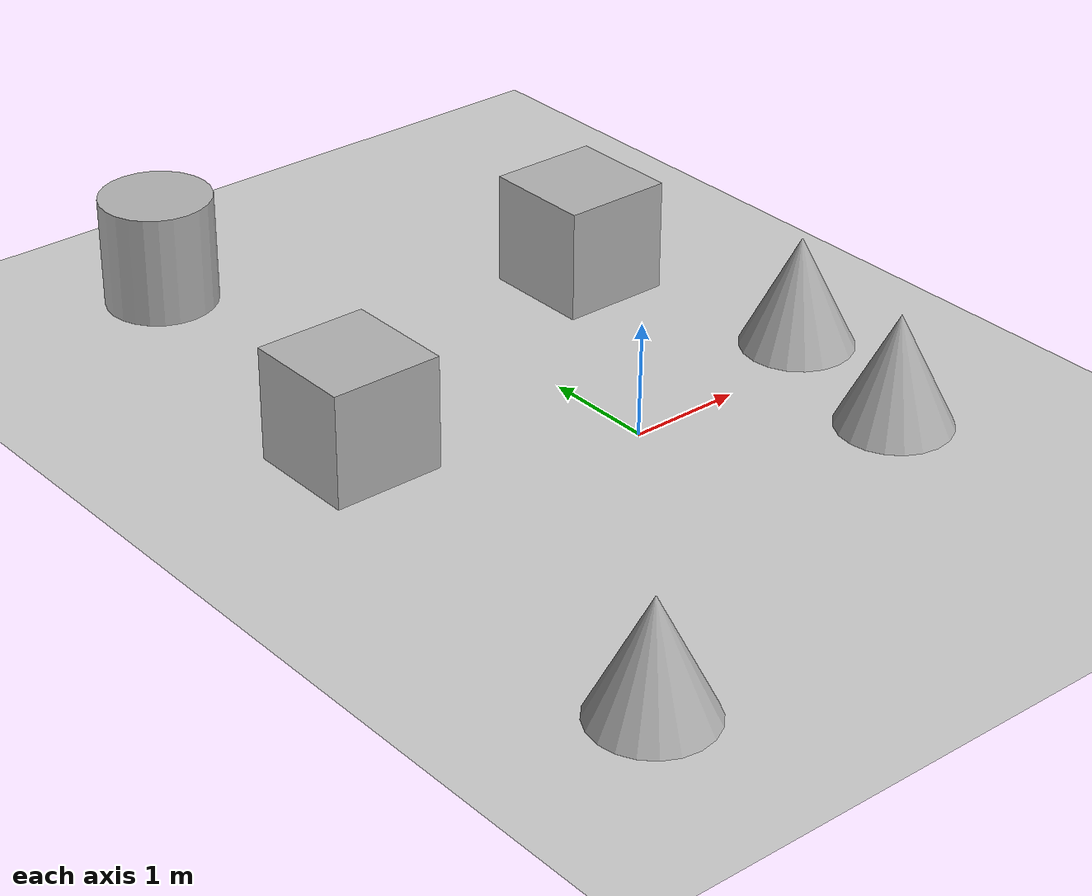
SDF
<sdf version='1.10'>
  <world name='empty'>
    <physics name='1ms' type='ignored'>
      <max_step_size>0.001</max_step_size>
      <real_time_factor>1</real_time_factor>
      <real_time_update_rate>1000</real_time_update_rate>
    </physics>
    <plugin name='gz::sim::systems::Physics' filename='gz-sim-physics-system'/>
    <plugin name='gz::sim::systems::UserCommands' filename='gz-sim-user-commands-system'/>
    <plugin name='gz::sim::systems::SceneBroadcaster' filename='gz-sim-scene-broadcaster-system'/>
    <plugin name='gz::sim::systems::Contact' filename='gz-sim-contact-system'/>
    <plugin
      filename="gz-sim-sensors-system"
      name="gz::sim::systems::Sensors">
      <render_engine>ogre2</render_engine>
    </plugin>
    <gravity>0 0 -9.8000000000000007</gravity>
    <magnetic_field>5.5644999999999998e-06 2.2875799999999999e-05 -4.2388400000000002e-05</magnetic_field>
    <atmosphere type='adiabatic'/>
    <scene>
      <ambient>0.400000006 0.400000006 0.400000006 1</ambient>
      <background>0.699999988 0.699999988 0.699999988 1</background>
      <shadows>true</shadows>
    </scene>
    <model name='ground_plane'>
      <static>true</static>
      <link name='link'>
        <collision name='collision'>
          <geometry>
            <plane>
              <normal>0 0 1</normal>
              <size>100 100</size>
            </plane>
          </geometry>
          <surface>
            <friction>
              <ode/>
            </friction>
            <bounce/>
            <contact/>
          </surface>
        </collision>
        <visual name='visual'>
          <geometry>
            <plane>
              <normal>0 0 1</normal>
              <size>100 100</size>
            </plane>
          </geometry>
          <material>
            <ambient>0.800000012 0.800000012 0.800000012 1</ambient>
            <diffuse>0.800000012 0.800000012 0.800000012 1</diffuse>
            <specular>0.800000012 0.800000012 0.800000012 1</specular>
          </material>
        </visual>
        <pose>0 0 0 0 0 0</pose>
        <inertial>
          <pose>0 0 0 0 0 0</pose>
          <mass>1</mass>
          <inertia>
            <ixx>1</ixx>
            <ixy>0</ixy>
            <ixz>0</ixz>
            <iyy>1</iyy>
            <iyz>0</iyz>
            <izz>1</izz>
          </inertia>
        </inertial>
        <enable_wind>false</enable_wind>
      </link>
      <pose>0 0 0 0 0 0</pose>
      <self_collide>false</self_collide>
    </model>
    <model name='box'>
      <pose>1.3443000316619873 2.3108599185943604 0.49999988138644785 6.6582442338586326e-18 -6.2665185630416551e-18 4.6787115810414775e-19</pose>
      <link name='box_link'>
        <inertial>
          <inertia>
            <ixx>0.16666</ixx>
            <ixy>0</ixy>
            <ixz>0</ixz>
            <iyy>0.16666</iyy>
            <iyz>0</iyz>
            <izz>0.16666</izz>
          </inertia>
          <mass>1</mass>
          <pose>0 0 0 0 0 0</pose>
        </inertial>
        <collision name='box_collision'>
          <geometry>
            <box>
              <size>1 1 1</size>
            </box>
          </geometry>
          <surface>
            <friction>
              <ode/>
            </friction>
            <bounce/>
            <contact/>
          </surface>
        </collision>
        <visual name='box_visual'>
          <geometry>
            <box>
              <size>1 1 1</size>
            </box>
          </geometry>
          <material>
            <ambient>0.300000012 0.300000012 0.300000012 1</ambient>
            <diffuse>0.699999988 0.699999988 0.699999988 1</diffuse>
            <specular>1 1 1 1</specular>
          </material>
        </visual>
        <pose>0 0 0 0 0 0</pose>
        <enable_wind>false</enable_wind>
      </link>
      <static>false</static>
      <self_collide>false</self_collide>
    </model>
    <model name='cone'>
      <pose>2.0419443191812419 0.28399373756640234 0.49999999993296756 5.2542474327592625e-17 -7.7132841039333329e-10 -1.7140678508643009e-22</pose>
      <link name='cone_link'>
        <inertial>
          <inertia>
            <ixx>0.074999999999999997</ixx>
            <ixy>0</ixy>
            <ixz>0</ixz>
            <iyy>0.074999999999999997</iyy>
            <iyz>0</iyz>
            <izz>0.074999999999999997</izz>
          </inertia>
          <mass>1</mass>
          <pose>0 0 0 0 0 0</pose>
        </inertial>
        <collision name='cone_collision'>
          <geometry>
            <cone>
              <radius>0.5</radius>
              <length>1</length>
            </cone>
          </geometry>
          <surface>
            <friction>
              <ode/>
            </friction>
            <bounce/>
            <contact/>
          </surface>
        </collision>
        <visual name='cone_visual'>
          <geometry>
            <cone>
              <radius>0.5</radius>
              <length>1</length>
            </cone>
          </geometry>
          <material>
            <ambient>0.300000012 0.300000012 0.300000012 1</ambient>
            <diffuse>0.699999988 0.699999988 0.699999988 1</diffuse>
            <specular>1 1 1 1</specular>
          </material>
        </visual>
        <pose>0 0 0 0 0 0</pose>
        <enable_wind>false</enable_wind>
      </link>
      <static>false</static>
      <self_collide>false</self_collide>
    </model>
    <model name='cone_0'>
      <pose>1.6956169808281039 -1.1822583702150418 0.49999999993296756 5.2541471503228405e-17 -7.7132841033694056e-10 -2.8937183272912105e-22</pose>
      <link name='cone_link'>
        <inertial>
          <inertia>
            <ixx>0.074999999999999997</ixx>
            <ixy>0</ixy>
            <ixz>0</ixz>
            <iyy>0.074999999999999997</iyy>
            <iyz>0</iyz>
            <izz>0.074999999999999997</izz>
          </inertia>
          <mass>1</mass>
          <pose>0 0 0 0 0 0</pose>
        </inertial>
        <collision name='cone_collision'>
          <geometry>
            <cone>
              <radius>0.5</radius>
              <length>1</length>
            </cone>
          </geometry>
          <surface>
            <friction>
              <ode/>
            </friction>
            <bounce/>
            <contact/>
          </surface>
        </collision>
        <visual name='cone_visual'>
          <geometry>
            <cone>
              <radius>0.5</radius>
              <length>1</length>
            </cone>
          </geometry>
          <material>
            <ambient>0.300000012 0.300000012 0.300000012 1</ambient>
            <diffuse>0.699999988 0.699999988 0.699999988 1</diffuse>
            <specular>1 1 1 1</specular>
          </material>
        </visual>
        <pose>0 0 0 0 0 0</pose>
        <enable_wind>false</enable_wind>
      </link>
      <static>false</static>
      <self_collide>false</self_collide>
    </model>
    <model name='box_0'>
      <pose>-2.0455440560051619 1.1123328050893955 0.49999999990199806 6.2287739151293738e-22 9.3279666454713669e-22 -3.6315533669320137e-22</pose>
      <link name='box_link'>
        <inertial>
          <inertia>
            <ixx>0.16666</ixx>
            <ixy>0</ixy>
            <ixz>0</ixz>
            <iyy>0.16666</iyy>
            <iyz>0</iyz>
            <izz>0.16666</izz>
          </inertia>
          <mass>1</mass>
          <pose>0 0 0 0 0 0</pose>
        </inertial>
        <collision name='box_collision'>
          <geometry>
            <box>
              <size>1 1 1</size>
            </box>
          </geometry>
          <surface>
            <friction>
              <ode/>
            </friction>
            <bounce/>
            <contact/>
          </surface>
        </collision>
        <visual name='box_visual'>
          <geometry>
            <box>
              <size>1 1 1</size>
            </box>
          </geometry>
          <material>
            <ambient>0.300000012 0.300000012 0.300000012 1</ambient>
            <diffuse>0.699999988 0.699999988 0.699999988 1</diffuse>
            <specular>1 1 1 1</specular>
          </material>
        </visual>
        <pose>0 0 0 0 0 0</pose>
        <enable_wind>false</enable_wind>
      </link>
      <static>false</static>
      <self_collide>false</self_collide>
    </model>
    <model name='cylinder'>
      <pose>-1.6781422083533579 4.3874863058605502 0.49999942638036005 4.7728004916885106e-20 -2.1691877558485589e-19 5.5515999605983893e-21</pose>
      <link name='cylinder_link'>
        <inertial>
          <inertia>
            <ixx>0.14580000000000001</ixx>
            <ixy>0</ixy>
            <ixz>0</ixz>
            <iyy>0.14580000000000001</iyy>
            <iyz>0</iyz>
            <izz>0.125</izz>
          </inertia>
          <mass>1</mass>
          <pose>0 0 0 0 0 0</pose>
        </inertial>
        <collision name='cylinder_collision'>
          <geometry>
            <cylinder>
              <radius>0.5</radius>
              <length>1</length>
            </cylinder>
          </geometry>
          <surface>
            <friction>
              <ode/>
            </friction>
            <bounce/>
            <contact/>
          </surface>
        </collision>
        <visual name='cylinder_visual'>
          <geometry>
            <cylinder>
              <radius>0.5</radius>
              <length>1</length>
            </cylinder>
          </geometry>
          <material>
            <ambient>0.300000012 0.300000012 0.300000012 1</ambient>
            <diffuse>0.699999988 0.699999988 0.699999988 1</diffuse>
            <specular>1 1 1 1</specular>
          </material>
        </visual>
        <pose>0 0 0 0 0 0</pose>
        <enable_wind>false</enable_wind>
      </link>
      <static>false</static>
      <self_collide>false</self_collide>
    </model>
    <model name='cone_1'>
      <pose>-2.4550275460561708 -2.8869435769620844 0.49999999993296756 5.2544475711148228e-17 -7.713284103730715e-10 -2.7496961812708449e-22</pose>
      <link name='cone_link'>
        <inertial>
          <inertia>
            <ixx>0.074999999999999997</ixx>
            <ixy>0</ixy>
            <ixz>0</ixz>
            <iyy>0.074999999999999997</iyy>
            <iyz>0</iyz>
            <izz>0.074999999999999997</izz>
          </inertia>
          <mass>1</mass>
          <pose>0 0 0 0 0 0</pose>
        </inertial>
        <collision name='cone_collision'>
          <geometry>
            <cone>
              <radius>0.5</radius>
              <length>1</length>
            </cone>
          </geometry>
          <surface>
            <friction>
              <ode/>
            </friction>
            <bounce/>
            <contact/>
          </surface>
        </collision>
        <visual name='cone_visual'>
          <geometry>
            <cone>
              <radius>0.5</radius>
              <length>1</length>
            </cone>
          </geometry>
          <material>
            <ambient>0.300000012 0.300000012 0.300000012 1</ambient>
            <diffuse>0.699999988 0.699999988 0.699999988 1</diffuse>
            <specular>1 1 1 1</specular>
          </material>
        </visual>
        <pose>0 0 0 0 0 0</pose>
        <enable_wind>false</enable_wind>
      </link>
      <static>false</static>
      <self_collide>false</self_collide>
    </model>
    <light name='sun' type='directional'>
      <pose>0 0 10 0 0 0</pose>
      <cast_shadows>true</cast_shadows>
      <intensity>1</intensity>
      <direction>-0.5 0.10000000000000001 -0.90000000000000002</direction>
      <diffuse>0.800000012 0.800000012 0.800000012 1</diffuse>
      <specular>0.200000003 0.200000003 0.200000003 1</specular>
      <attenuation>
        <range>1000</range>
        <linear>0.01</linear>
        <constant>0.90000000000000002</constant>
        <quadratic>0.001</quadratic>
      </attenuation>
      <spot>
        <inner_angle>0</inner_angle>
        <outer_angle>0</outer_angle>
        <falloff>0</falloff>
      </spot>
    </light>
  </world>
</sdf>
